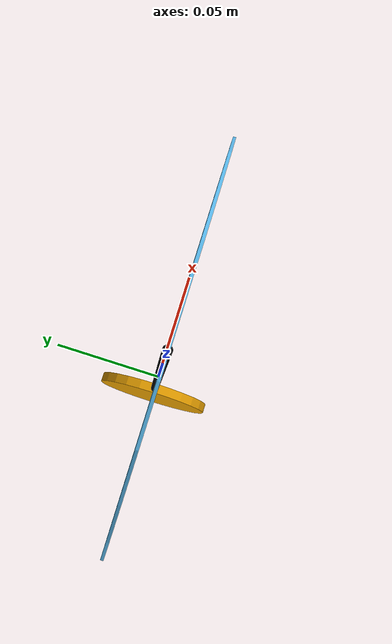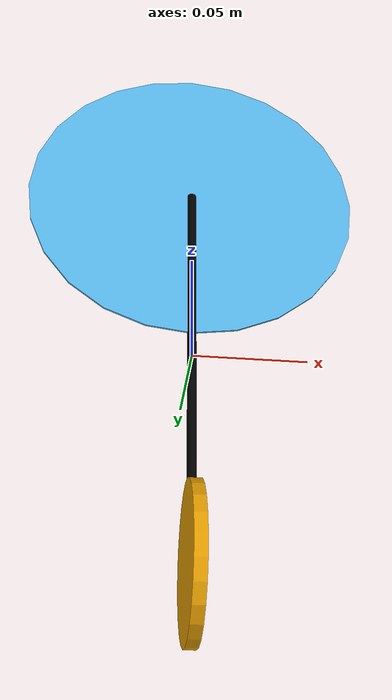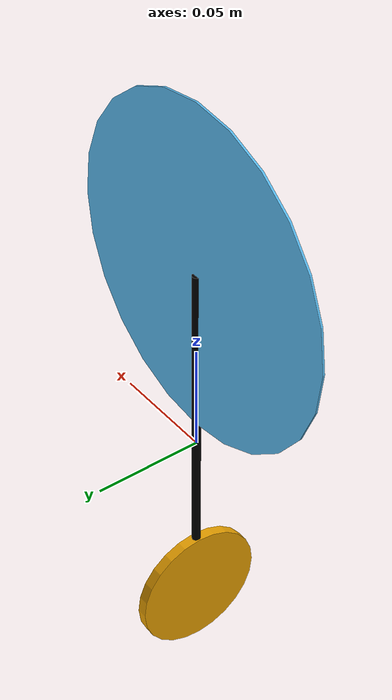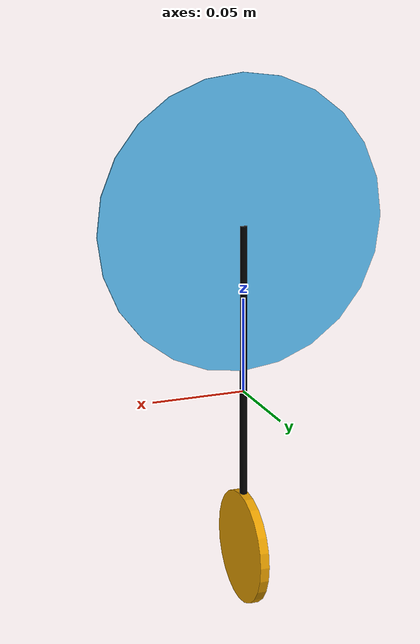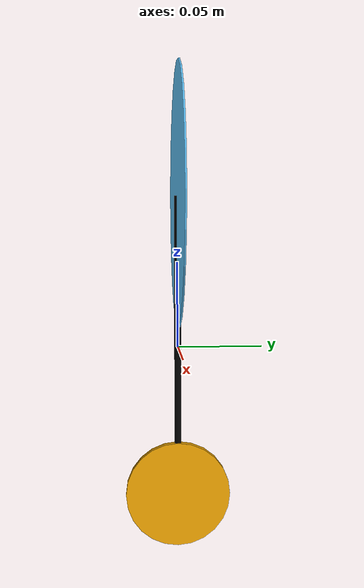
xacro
<?xml version="1.0" ?>
<robot name="unicycle" xmlns:xacro="http://www.ros.org/wiki/xacro">

<xacro:macro name="cylinder_inertia" params="mass r h">
  <inertial>
    <mass value="${mass}"/>
    <inertia  ixx="${mass*(3*r*r+h*h)/12}" ixy = "0" ixz = "0"
              iyy="${mass*(3*r*r+h*h)/12}" iyz = "0"
              izz="${mass*r*r/2}" />
  </inertial>
</xacro:macro>

<!--
Wheel radius = 0.031m
Wheel length = 0.001m
Disc radius = 0.077m
Disc length = 0.001m
Frame radius = 0.002m
Frame length = 0.177m
-->

<xacro:include filename="$(find unicycle)/urdf/uni_barebones.trans" />

<link name = "wheel">
    <visual>
        <origin xyz="0 0 0" rpy="0 0 0"/>
        <geometry>
            <cylinder radius="0.031" length="0.005"/>
        </geometry>
    </visual>
    <collision>
        <origin xyz="0 0 0" rpy="0 0 0"/>
        <geometry>
            <cylinder radius="0.031" length="0.005"/>
        </geometry>
    </collision>
    <xacro:cylinder_inertia mass="0.1" r="0.031" h="0.005"/>
</link>

<link name = "disc">
    <visual>
        <origin xyz="0 0 0" rpy="0 0 0"/>
        <geometry>
            <cylinder radius="0.077" length="0.001"/>
        </geometry>
    </visual>
    <xacro:cylinder_inertia mass="0.384" r="0.077" h="0.001"/>
</link>

<link name = "frame">
    <visual>
        <origin xyz="0 0 0" rpy="0 0 0"/>
        <geometry>
            <cylinder radius="0.002" length="0.177"/>
        </geometry>
        <material name="black">
            <color rgba="0 0 0 1"/>
        </material>
    </visual>
    <collision>
        <origin xyz="0 0 0" rpy="0 0 0"/>
        <geometry>
            <cylinder radius="0.002" length="0.177"/>
        </geometry>
    </collision>
    <xacro:cylinder_inertia mass="0.848" r="0.002" h="0.177"/>
</link>

<!-- Joint between the wheel and the frame -->
<joint name="wheel_joint" type="revolute">
    <parent link="frame"/>
    <child link="wheel"/>
    <origin xyz="0 0 -0.0885" rpy="0 1.5708 0"/>
    <limit effort="0.5" velocity="1.0" lower="-3.14" upper="3.14"/>
</joint>

<!-- Joint between the disc and the frame -->
<joint name="disc_joint" type="revolute">
    <parent link="frame"/>
    <child link="disc"/>
    <origin xyz="0 0 0.0885" rpy="1.5708 0 0"/>
    <limit effort="0.5" velocity="1.0" lower="-3.14" upper="3.14"/>
</joint>
</robot>
